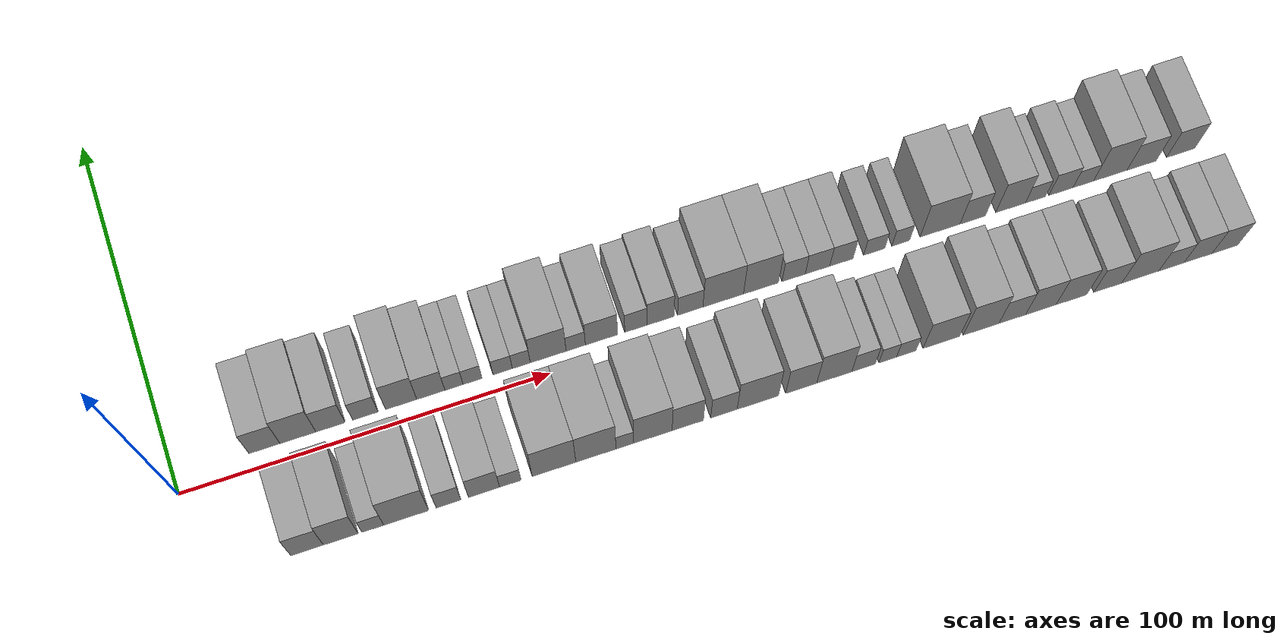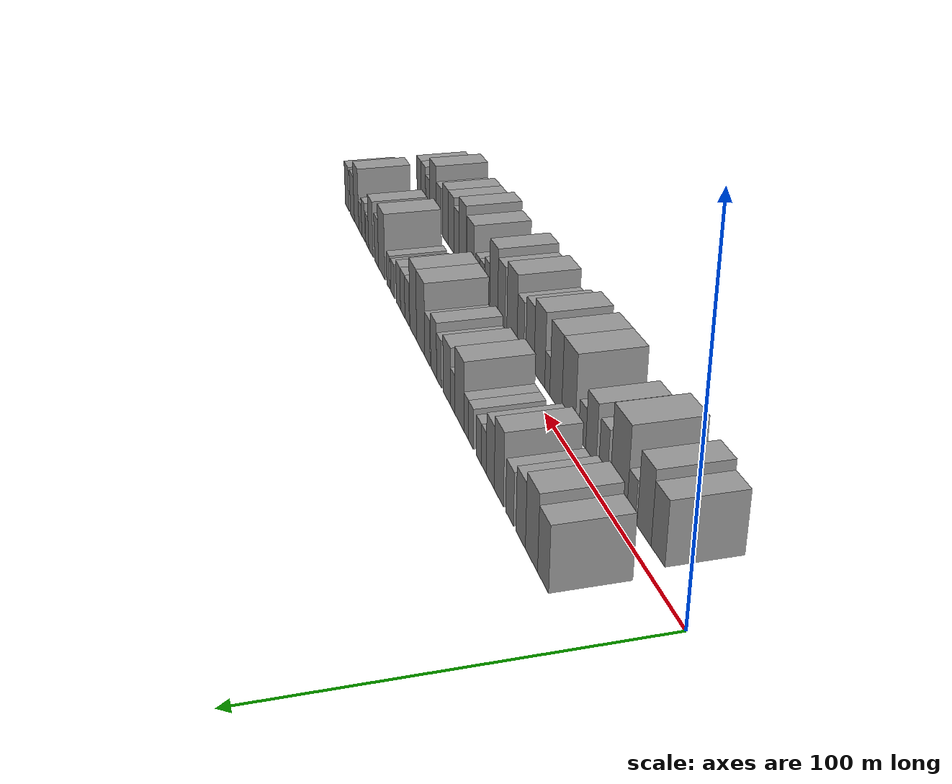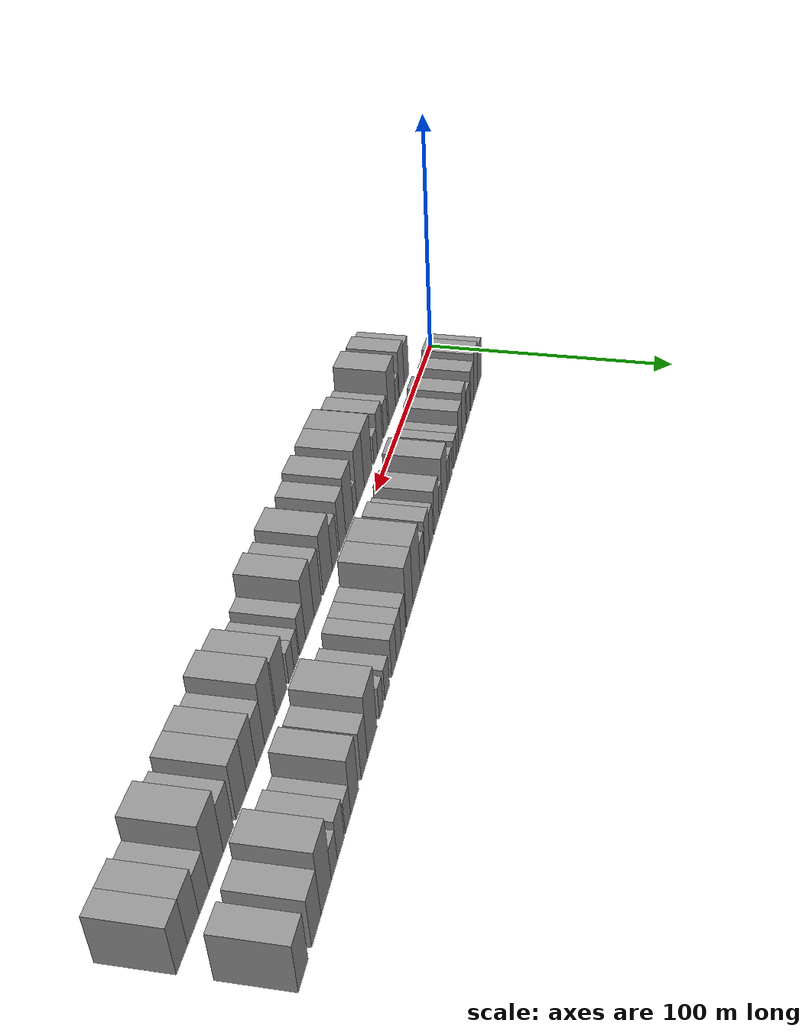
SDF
<sdf version="1.6">
 <world name="default">
  <scene>
   <sky><clouds><speed>12</speed></clouds></sky>
   <ambient>0.4 0.4 0.4 1</ambient>
   <background>0.7 0.7 0.7 1</background>
   <shadows>1</shadows>
  </scene>
  <gravity>0 0 -9.8066</gravity>
  <magnetic_field>6e-06 2.3e-05 -4.2e-05</magnetic_field>
  <physics default="0" name="default_physics" type="ode">
   <ode>
    <solver>
     <type>quick</type>
     <iters>10</iters>
     <sor>1.0</sor>
     <use_dynamic_moi_rescaling>0</use_dynamic_moi_rescaling>
    </solver>
    <constraints>
     <cfm>0</cfm>
     <erp>0.2</erp>
     <contact_max_correcting_vel>100</contact_max_correcting_vel>
     <contact_surface_layer>0.001</contact_surface_layer>
    </constraints>
   </ode>
   <max_step_size>0.004</max_step_size>
   <real_time_factor>1</real_time_factor>
   <real_time_update_rate>250</real_time_update_rate>
  </physics>
  <light name="sun" type="directional">
   <pose>0 0 10 0 0 0</pose>
   <diffuse>0.8 0.8 0.8 1</diffuse>
   <specular>0.2 0.2 0.2 1</specular>
   <attenuation>
    <range>1000</range>
    <constant>0.9</constant>
    <linear>0.01</linear>
    <quadratic>0.001</quadratic>
   </attenuation>
   <direction>-0.5 0.1 -0.9</direction>
  </light>
  <model name="building_1">
   <static>1</static>
   <pose>24.1467 14.5000 0 0.000000 0.000000 1.570796</pose>
   <link name="link">
    <pose>0 0 9.00 0 0 0</pose>
    <collision name="collision"><geometry><box><size>20.0000 8.2934 18.0000</size></box></geometry></collision>
    <visual name="visual">
     <cast_shadows>0</cast_shadows>
     <geometry><box><size>20.0000 8.2934 18.0000</size></box></geometry>
     <material>
      <script>
       <uri>model://grey_wall/materials/scripts</uri>
       <uri>model://grey_wall/materials/textures</uri>
       <name>vrc/grey_wall</name>
      </script>
     </material>
    </visual>
   </link>
  </model>
  <model name="building_2">
   <static>1</static>
   <pose>33.1050 14.5000 0 0.000000 0.000000 1.570796</pose>
   <link name="link">
    <pose>0 0 10.50 0 0 0</pose>
    <collision name="collision"><geometry><box><size>20.0000 9.6233 21.0000</size></box></geometry></collision>
    <visual name="visual">
     <cast_shadows>0</cast_shadows>
     <geometry><box><size>20.0000 9.6233 21.0000</size></box></geometry>
     <material>
      <script>
       <uri>model://grey_wall/materials/scripts</uri>
       <uri>model://grey_wall/materials/textures</uri>
       <name>vrc/grey_wall</name>
      </script>
     </material>
    </visual>
   </link>
  </model>
  <model name="building_3">
   <static>1</static>
   <pose>41.8600 14.5000 0 0.000000 0.000000 1.570796</pose>
   <link name="link">
    <pose>0 0 9.00 0 0 0</pose>
    <collision name="collision"><geometry><box><size>20.0000 7.8866 18.0000</size></box></geometry></collision>
    <visual name="visual">
     <cast_shadows>0</cast_shadows>
     <geometry><box><size>20.0000 7.8866 18.0000</size></box></geometry>
     <material>
      <script>
       <uri>model://grey_wall/materials/scripts</uri>
       <uri>model://grey_wall/materials/textures</uri>
       <name>vrc/grey_wall</name>
      </script>
     </material>
    </visual>
   </link>
  </model>
  <model name="building_4">
   <static>1</static>
   <pose>51.2368 14.5000 0 0.000000 0.000000 1.570796</pose>
   <link name="link">
    <pose>0 0 7.50 0 0 0</pose>
    <collision name="collision"><geometry><box><size>20.0000 6.8671 15.0000</size></box></geometry></collision>
    <visual name="visual">
     <cast_shadows>0</cast_shadows>
     <geometry><box><size>20.0000 6.8671 15.0000</size></box></geometry>
     <material>
      <script>
       <uri>model://grey_wall/materials/scripts</uri>
       <uri>model://grey_wall/materials/textures</uri>
       <name>vrc/grey_wall</name>
      </script>
     </material>
    </visual>
   </link>
  </model>
  <model name="building_5">
   <static>1</static>
   <pose>60.8920 14.5000 0 0.000000 0.000000 1.570796</pose>
   <link name="link">
    <pose>0 0 10.50 0 0 0</pose>
    <collision name="collision"><geometry><box><size>20.0000 8.4434 21.0000</size></box></geometry></collision>
    <visual name="visual">
     <cast_shadows>0</cast_shadows>
     <geometry><box><size>20.0000 8.4434 21.0000</size></box></geometry>
     <material>
      <script>
       <uri>model://grey_wall/materials/scripts</uri>
       <uri>model://grey_wall/materials/textures</uri>
       <name>vrc/grey_wall</name>
      </script>
     </material>
    </visual>
   </link>
  </model>
  <model name="building_6">
   <static>1</static>
   <pose>68.9235 14.5000 0 0.000000 0.000000 1.570796</pose>
   <link name="link">
    <pose>0 0 9.00 0 0 0</pose>
    <collision name="collision"><geometry><box><size>20.0000 7.6196 18.0000</size></box></geometry></collision>
    <visual name="visual">
     <cast_shadows>0</cast_shadows>
     <geometry><box><size>20.0000 7.6196 18.0000</size></box></geometry>
     <material>
      <script>
       <uri>model://grey_wall/materials/scripts</uri>
       <uri>model://grey_wall/materials/textures</uri>
       <name>vrc/grey_wall</name>
      </script>
     </material>
    </visual>
   </link>
  </model>
  <model name="building_7">
   <static>1</static>
   <pose>75.2003 14.5000 0 0.000000 0.000000 1.570796</pose>
   <link name="link">
    <pose>0 0 6.00 0 0 0</pose>
    <collision name="collision"><geometry><box><size>20.0000 4.9338 12.0000</size></box></geometry></collision>
    <visual name="visual">
     <cast_shadows>0</cast_shadows>
     <geometry><box><size>20.0000 4.9338 12.0000</size></box></geometry>
     <material>
      <script>
       <uri>model://grey_wall/materials/scripts</uri>
       <uri>model://grey_wall/materials/textures</uri>
       <name>vrc/grey_wall</name>
      </script>
     </material>
    </visual>
   </link>
  </model>
  <model name="building_8">
   <static>1</static>
   <pose>80.2478 14.5000 0 0.000000 0.000000 1.570796</pose>
   <link name="link">
    <pose>0 0 6.00 0 0 0</pose>
    <collision name="collision"><geometry><box><size>20.0000 5.1613 12.0000</size></box></geometry></collision>
    <visual name="visual">
     <cast_shadows>0</cast_shadows>
     <geometry><box><size>20.0000 5.1613 12.0000</size></box></geometry>
     <material>
      <script>
       <uri>model://grey_wall/materials/scripts</uri>
       <uri>model://grey_wall/materials/textures</uri>
       <name>vrc/grey_wall</name>
      </script>
     </material>
    </visual>
   </link>
  </model>
  <model name="building_9">
   <static>1</static>
   <pose>88.4487 14.5000 0 0.000000 0.000000 1.570796</pose>
   <link name="link">
    <pose>0 0 6.00 0 0 0</pose>
    <collision name="collision"><geometry><box><size>20.0000 5.2404 12.0000</size></box></geometry></collision>
    <visual name="visual">
     <cast_shadows>0</cast_shadows>
     <geometry><box><size>20.0000 5.2404 12.0000</size></box></geometry>
     <material>
      <script>
       <uri>model://grey_wall/materials/scripts</uri>
       <uri>model://grey_wall/materials/textures</uri>
       <name>vrc/grey_wall</name>
      </script>
     </material>
    </visual>
   </link>
  </model>
  <model name="building_10">
   <static>1</static>
   <pose>93.5204 14.5000 0 0.000000 0.000000 1.570796</pose>
   <link name="link">
    <pose>0 0 6.00 0 0 0</pose>
    <collision name="collision"><geometry><box><size>20.0000 4.9031 12.0000</size></box></geometry></collision>
    <visual name="visual">
     <cast_shadows>0</cast_shadows>
     <geometry><box><size>20.0000 4.9031 12.0000</size></box></geometry>
     <material>
      <script>
       <uri>model://grey_wall/materials/scripts</uri>
       <uri>model://grey_wall/materials/textures</uri>
       <name>vrc/grey_wall</name>
      </script>
     </material>
    </visual>
   </link>
  </model>
  <model name="building_11">
   <static>1</static>
   <pose>100.8840 14.5000 0 0.000000 0.000000 1.570796</pose>
   <link name="link">
    <pose>0 0 10.50 0 0 0</pose>
    <collision name="collision"><geometry><box><size>20.0000 9.8242 21.0000</size></box></geometry></collision>
    <visual name="visual">
     <cast_shadows>0</cast_shadows>
     <geometry><box><size>20.0000 9.8242 21.0000</size></box></geometry>
     <material>
      <script>
       <uri>model://grey_wall/materials/scripts</uri>
       <uri>model://grey_wall/materials/textures</uri>
       <name>vrc/grey_wall</name>
      </script>
     </material>
    </visual>
   </link>
  </model>
  <model name="building_12">
   <static>1</static>
   <pose>108.4404 14.5000 0 0.000000 0.000000 1.570796</pose>
   <link name="link">
    <pose>0 0 6.00 0 0 0</pose>
    <collision name="collision"><geometry><box><size>20.0000 5.2886 12.0000</size></box></geometry></collision>
    <visual name="visual">
     <cast_shadows>0</cast_shadows>
     <geometry><box><size>20.0000 5.2886 12.0000</size></box></geometry>
     <material>
      <script>
       <uri>model://grey_wall/materials/scripts</uri>
       <uri>model://grey_wall/materials/textures</uri>
       <name>vrc/grey_wall</name>
      </script>
     </material>
    </visual>
   </link>
  </model>
  <model name="building_13">
   <static>1</static>
   <pose>115.5101 14.5000 0 0.000000 0.000000 1.570796</pose>
   <link name="link">
    <pose>0 0 9.00 0 0 0</pose>
    <collision name="collision"><geometry><box><size>20.0000 8.8508 18.0000</size></box></geometry></collision>
    <visual name="visual">
     <cast_shadows>0</cast_shadows>
     <geometry><box><size>20.0000 8.8508 18.0000</size></box></geometry>
     <material>
      <script>
       <uri>model://grey_wall/materials/scripts</uri>
       <uri>model://grey_wall/materials/textures</uri>
       <name>vrc/grey_wall</name>
      </script>
     </material>
    </visual>
   </link>
  </model>
  <model name="building_14">
   <static>1</static>
   <pose>124.9862 14.5000 0 0.000000 0.000000 1.570796</pose>
   <link name="link">
    <pose>0 0 7.50 0 0 0</pose>
    <collision name="collision"><geometry><box><size>20.0000 6.1016 15.0000</size></box></geometry></collision>
    <visual name="visual">
     <cast_shadows>0</cast_shadows>
     <geometry><box><size>20.0000 6.1016 15.0000</size></box></geometry>
     <material>
      <script>
       <uri>model://grey_wall/materials/scripts</uri>
       <uri>model://grey_wall/materials/textures</uri>
       <name>vrc/grey_wall</name>
      </script>
     </material>
    </visual>
   </link>
  </model>
  <model name="building_15">
   <static>1</static>
   <pose>131.7829 14.5000 0 0.000000 0.000000 1.570796</pose>
   <link name="link">
    <pose>0 0 9.00 0 0 0</pose>
    <collision name="collision"><geometry><box><size>20.0000 7.4918 18.0000</size></box></geometry></collision>
    <visual name="visual">
     <cast_shadows>0</cast_shadows>
     <geometry><box><size>20.0000 7.4918 18.0000</size></box></geometry>
     <material>
      <script>
       <uri>model://grey_wall/materials/scripts</uri>
       <uri>model://grey_wall/materials/textures</uri>
       <name>vrc/grey_wall</name>
      </script>
     </material>
    </visual>
   </link>
  </model>
  <model name="building_16">
   <static>1</static>
   <pose>140.0508 14.5000 0 0.000000 0.000000 1.570796</pose>
   <link name="link">
    <pose>0 0 7.50 0 0 0</pose>
    <collision name="collision"><geometry><box><size>20.0000 7.0439 15.0000</size></box></geometry></collision>
    <visual name="visual">
     <cast_shadows>0</cast_shadows>
     <geometry><box><size>20.0000 7.0439 15.0000</size></box></geometry>
     <material>
      <script>
       <uri>model://grey_wall/materials/scripts</uri>
       <uri>model://grey_wall/materials/textures</uri>
       <name>vrc/grey_wall</name>
      </script>
     </material>
    </visual>
   </link>
  </model>
  <model name="building_17">
   <static>1</static>
   <pose>149.2212 14.5000 0 0.000000 0.000000 1.570796</pose>
   <link name="link">
    <pose>0 0 12.00 0 0 0</pose>
    <collision name="collision"><geometry><box><size>20.0000 11.2969 24.0000</size></box></geometry></collision>
    <visual name="visual">
     <cast_shadows>0</cast_shadows>
     <geometry><box><size>20.0000 11.2969 24.0000</size></box></geometry>
     <material>
      <script>
       <uri>model://grey_wall/materials/scripts</uri>
       <uri>model://grey_wall/materials/textures</uri>
       <name>vrc/grey_wall</name>
      </script>
     </material>
    </visual>
   </link>
  </model>
  <model name="building_18">
   <static>1</static>
   <pose>159.7557 14.5000 0 0.000000 0.000000 1.570796</pose>
   <link name="link">
    <pose>0 0 12.00 0 0 0</pose>
    <collision name="collision"><geometry><box><size>20.0000 9.7722 24.0000</size></box></geometry></collision>
    <visual name="visual">
     <cast_shadows>0</cast_shadows>
     <geometry><box><size>20.0000 9.7722 24.0000</size></box></geometry>
     <material>
      <script>
       <uri>model://grey_wall/materials/scripts</uri>
       <uri>model://grey_wall/materials/textures</uri>
       <name>vrc/grey_wall</name>
      </script>
     </material>
    </visual>
   </link>
  </model>
  <model name="building_19">
   <static>1</static>
   <pose>168.8953 14.5000 0 0.000000 0.000000 1.570796</pose>
   <link name="link">
    <pose>0 0 7.50 0 0 0</pose>
    <collision name="collision"><geometry><box><size>20.0000 6.5069 15.0000</size></box></geometry></collision>
    <visual name="visual">
     <cast_shadows>0</cast_shadows>
     <geometry><box><size>20.0000 6.5069 15.0000</size></box></geometry>
     <material>
      <script>
       <uri>model://grey_wall/materials/scripts</uri>
       <uri>model://grey_wall/materials/textures</uri>
       <name>vrc/grey_wall</name>
      </script>
     </material>
    </visual>
   </link>
  </model>
  <model name="building_20">
   <static>1</static>
   <pose>175.5884 14.5000 0 0.000000 0.000000 1.570796</pose>
   <link name="link">
    <pose>0 0 7.50 0 0 0</pose>
    <collision name="collision"><geometry><box><size>20.0000 6.8795 15.0000</size></box></geometry></collision>
    <visual name="visual">
     <cast_shadows>0</cast_shadows>
     <geometry><box><size>20.0000 6.8795 15.0000</size></box></geometry>
     <material>
      <script>
       <uri>model://grey_wall/materials/scripts</uri>
       <uri>model://grey_wall/materials/textures</uri>
       <name>vrc/grey_wall</name>
      </script>
     </material>
    </visual>
   </link>
  </model>
  <model name="building_21">
   <static>1</static>
   <pose>182.3086 14.5000 0 0.000000 0.000000 1.570796</pose>
   <link name="link">
    <pose>0 0 7.50 0 0 0</pose>
    <collision name="collision"><geometry><box><size>20.0000 6.5608 15.0000</size></box></geometry></collision>
    <visual name="visual">
     <cast_shadows>0</cast_shadows>
     <geometry><box><size>20.0000 6.5608 15.0000</size></box></geometry>
     <material>
      <script>
       <uri>model://grey_wall/materials/scripts</uri>
       <uri>model://grey_wall/materials/textures</uri>
       <name>vrc/grey_wall</name>
      </script>
     </material>
    </visual>
   </link>
  </model>
  <model name="building_22">
   <static>1</static>
   <pose>191.5790 14.5000 0 0.000000 0.000000 1.570796</pose>
   <link name="link">
    <pose>0 0 6.00 0 0 0</pose>
    <collision name="collision"><geometry><box><size>20.0000 5.9800 12.0000</size></box></geometry></collision>
    <visual name="visual">
     <cast_shadows>0</cast_shadows>
     <geometry><box><size>20.0000 5.9800 12.0000</size></box></geometry>
     <material>
      <script>
       <uri>model://grey_wall/materials/scripts</uri>
       <uri>model://grey_wall/materials/textures</uri>
       <name>vrc/grey_wall</name>
      </script>
     </material>
    </visual>
   </link>
  </model>
  <model name="building_23">
   <static>1</static>
   <pose>199.0759 14.5000 0 0.000000 0.000000 1.570796</pose>
   <link name="link">
    <pose>0 0 6.00 0 0 0</pose>
    <collision name="collision"><geometry><box><size>20.0000 5.0139 12.0000</size></box></geometry></collision>
    <visual name="visual">
     <cast_shadows>0</cast_shadows>
     <geometry><box><size>20.0000 5.0139 12.0000</size></box></geometry>
     <material>
      <script>
       <uri>model://grey_wall/materials/scripts</uri>
       <uri>model://grey_wall/materials/textures</uri>
       <name>vrc/grey_wall</name>
      </script>
     </material>
    </visual>
   </link>
  </model>
  <model name="building_24">
   <static>1</static>
   <pose>210.2397 14.5000 0 0.000000 0.000000 1.570796</pose>
   <link name="link">
    <pose>0 0 12.00 0 0 0</pose>
    <collision name="collision"><geometry><box><size>20.0000 11.3136 24.0000</size></box></geometry></collision>
    <visual name="visual">
     <cast_shadows>0</cast_shadows>
     <geometry><box><size>20.0000 11.3136 24.0000</size></box></geometry>
     <material>
      <script>
       <uri>model://grey_wall/materials/scripts</uri>
       <uri>model://grey_wall/materials/textures</uri>
       <name>vrc/grey_wall</name>
      </script>
     </material>
    </visual>
   </link>
  </model>
  <model name="building_25">
   <static>1</static>
   <pose>219.5023 14.5000 0 0.000000 0.000000 1.570796</pose>
   <link name="link">
    <pose>0 0 9.00 0 0 0</pose>
    <collision name="collision"><geometry><box><size>20.0000 7.2116 18.0000</size></box></geometry></collision>
    <visual name="visual">
     <cast_shadows>0</cast_shadows>
     <geometry><box><size>20.0000 7.2116 18.0000</size></box></geometry>
     <material>
      <script>
       <uri>model://grey_wall/materials/scripts</uri>
       <uri>model://grey_wall/materials/textures</uri>
       <name>vrc/grey_wall</name>
      </script>
     </material>
    </visual>
   </link>
  </model>
  <model name="building_26">
   <static>1</static>
   <pose>230.3308 14.5000 0 0.000000 0.000000 1.570796</pose>
   <link name="link">
    <pose>0 0 10.50 0 0 0</pose>
    <collision name="collision"><geometry><box><size>20.0000 8.4454 21.0000</size></box></geometry></collision>
    <visual name="visual">
     <cast_shadows>0</cast_shadows>
     <geometry><box><size>20.0000 8.4454 21.0000</size></box></geometry>
     <material>
      <script>
       <uri>model://grey_wall/materials/scripts</uri>
       <uri>model://grey_wall/materials/textures</uri>
       <name>vrc/grey_wall</name>
      </script>
     </material>
    </visual>
   </link>
  </model>
  <model name="building_27">
   <static>1</static>
   <pose>237.4444 14.5000 0 0.000000 0.000000 1.570796</pose>
   <link name="link">
    <pose>0 0 6.00 0 0 0</pose>
    <collision name="collision"><geometry><box><size>20.0000 5.7818 12.0000</size></box></geometry></collision>
    <visual name="visual">
     <cast_shadows>0</cast_shadows>
     <geometry><box><size>20.0000 5.7818 12.0000</size></box></geometry>
     <material>
      <script>
       <uri>model://grey_wall/materials/scripts</uri>
       <uri>model://grey_wall/materials/textures</uri>
       <name>vrc/grey_wall</name>
      </script>
     </material>
    </visual>
   </link>
  </model>
  <model name="building_28">
   <static>1</static>
   <pose>244.7989 14.5000 0 0.000000 0.000000 1.570796</pose>
   <link name="link">
    <pose>0 0 7.50 0 0 0</pose>
    <collision name="collision"><geometry><box><size>20.0000 6.9273 15.0000</size></box></geometry></collision>
    <visual name="visual">
     <cast_shadows>0</cast_shadows>
     <geometry><box><size>20.0000 6.9273 15.0000</size></box></geometry>
     <material>
      <script>
       <uri>model://grey_wall/materials/scripts</uri>
       <uri>model://grey_wall/materials/textures</uri>
       <name>vrc/grey_wall</name>
      </script>
     </material>
    </visual>
   </link>
  </model>
  <model name="building_29">
   <static>1</static>
   <pose>251.2158 14.5000 0 0.000000 0.000000 1.570796</pose>
   <link name="link">
    <pose>0 0 6.00 0 0 0</pose>
    <collision name="collision"><geometry><box><size>20.0000 5.9065 12.0000</size></box></geometry></collision>
    <visual name="visual">
     <cast_shadows>0</cast_shadows>
     <geometry><box><size>20.0000 5.9065 12.0000</size></box></geometry>
     <material>
      <script>
       <uri>model://grey_wall/materials/scripts</uri>
       <uri>model://grey_wall/materials/textures</uri>
       <name>vrc/grey_wall</name>
      </script>
     </material>
    </visual>
   </link>
  </model>
  <model name="building_30">
   <static>1</static>
   <pose>259.0124 14.5000 0 0.000000 0.000000 1.570796</pose>
   <link name="link">
    <pose>0 0 12.00 0 0 0</pose>
    <collision name="collision"><geometry><box><size>20.0000 9.6868 24.0000</size></box></geometry></collision>
    <visual name="visual">
     <cast_shadows>0</cast_shadows>
     <geometry><box><size>20.0000 9.6868 24.0000</size></box></geometry>
     <material>
      <script>
       <uri>model://grey_wall/materials/scripts</uri>
       <uri>model://grey_wall/materials/textures</uri>
       <name>vrc/grey_wall</name>
      </script>
     </material>
    </visual>
   </link>
  </model>
  <model name="building_31">
   <static>1</static>
   <pose>268.0664 14.5000 0 0.000000 0.000000 1.570796</pose>
   <link name="link">
    <pose>0 0 9.00 0 0 0</pose>
    <collision name="collision"><geometry><box><size>20.0000 8.4212 18.0000</size></box></geometry></collision>
    <visual name="visual">
     <cast_shadows>0</cast_shadows>
     <geometry><box><size>20.0000 8.4212 18.0000</size></box></geometry>
     <material>
      <script>
       <uri>model://grey_wall/materials/scripts</uri>
       <uri>model://grey_wall/materials/textures</uri>
       <name>vrc/grey_wall</name>
      </script>
     </material>
    </visual>
   </link>
  </model>
  <model name="building_32">
   <static>1</static>
   <pose>279.4104 14.5000 0 0.000000 0.000000 1.570796</pose>
   <link name="link">
    <pose>0 0 9.00 0 0 0</pose>
    <collision name="collision"><geometry><box><size>20.0000 8.2668 18.0000</size></box></geometry></collision>
    <visual name="visual">
     <cast_shadows>0</cast_shadows>
     <geometry><box><size>20.0000 8.2668 18.0000</size></box></geometry>
     <material>
      <script>
       <uri>model://grey_wall/materials/scripts</uri>
       <uri>model://grey_wall/materials/textures</uri>
       <name>vrc/grey_wall</name>
      </script>
     </material>
    </visual>
   </link>
  </model>
  <model name="building_33">
   <static>1</static>
   <pose>27.2985 -14.5000 0 0.000000 0.000000 1.570796</pose>
   <link name="link">
    <pose>0 0 9.00 0 0 0</pose>
    <collision name="collision"><geometry><box><size>20.0000 8.5969 18.0000</size></box></geometry></collision>
    <visual name="visual">
     <cast_shadows>0</cast_shadows>
     <geometry><box><size>20.0000 8.5969 18.0000</size></box></geometry>
     <material>
      <script>
       <uri>model://grey_wall/materials/scripts</uri>
       <uri>model://grey_wall/materials/textures</uri>
       <name>vrc/grey_wall</name>
      </script>
     </material>
    </visual>
   </link>
  </model>
  <model name="building_34">
   <static>1</static>
   <pose>36.1975 -14.5000 0 0.000000 0.000000 1.570796</pose>
   <link name="link">
    <pose>0 0 10.50 0 0 0</pose>
    <collision name="collision"><geometry><box><size>20.0000 9.2012 21.0000</size></box></geometry></collision>
    <visual name="visual">
     <cast_shadows>0</cast_shadows>
     <geometry><box><size>20.0000 9.2012 21.0000</size></box></geometry>
     <material>
      <script>
       <uri>model://grey_wall/materials/scripts</uri>
       <uri>model://grey_wall/materials/textures</uri>
       <name>vrc/grey_wall</name>
      </script>
     </material>
    </visual>
   </link>
  </model>
  <model name="building_35">
   <static>1</static>
   <pose>44.6813 -14.5000 0 0.000000 0.000000 1.570796</pose>
   <link name="link">
    <pose>0 0 6.00 0 0 0</pose>
    <collision name="collision"><geometry><box><size>20.0000 5.7665 12.0000</size></box></geometry></collision>
    <visual name="visual">
     <cast_shadows>0</cast_shadows>
     <geometry><box><size>20.0000 5.7665 12.0000</size></box></geometry>
     <material>
      <script>
       <uri>model://grey_wall/materials/scripts</uri>
       <uri>model://grey_wall/materials/textures</uri>
       <name>vrc/grey_wall</name>
      </script>
     </material>
    </visual>
   </link>
  </model>
  <model name="building_36">
   <static>1</static>
   <pose>53.5441 -14.5000 0 0.000000 0.000000 1.570796</pose>
   <link name="link">
    <pose>0 0 12.00 0 0 0</pose>
    <collision name="collision"><geometry><box><size>20.0000 11.9591 24.0000</size></box></geometry></collision>
    <visual name="visual">
     <cast_shadows>0</cast_shadows>
     <geometry><box><size>20.0000 11.9591 24.0000</size></box></geometry>
     <material>
      <script>
       <uri>model://grey_wall/materials/scripts</uri>
       <uri>model://grey_wall/materials/textures</uri>
       <name>vrc/grey_wall</name>
      </script>
     </material>
    </visual>
   </link>
  </model>
  <model name="building_37">
   <static>1</static>
   <pose>64.8328 -14.5000 0 0.000000 0.000000 1.570796</pose>
   <link name="link">
    <pose>0 0 7.50 0 0 0</pose>
    <collision name="collision"><geometry><box><size>20.0000 6.6182 15.0000</size></box></geometry></collision>
    <visual name="visual">
     <cast_shadows>0</cast_shadows>
     <geometry><box><size>20.0000 6.6182 15.0000</size></box></geometry>
     <material>
      <script>
       <uri>model://grey_wall/materials/scripts</uri>
       <uri>model://grey_wall/materials/textures</uri>
       <name>vrc/grey_wall</name>
      </script>
     </material>
    </visual>
   </link>
  </model>
  <model name="building_38">
   <static>1</static>
   <pose>74.3163 -14.5000 0 0.000000 0.000000 1.570796</pose>
   <link name="link">
    <pose>0 0 9.00 0 0 0</pose>
    <collision name="collision"><geometry><box><size>20.0000 8.3490 18.0000</size></box></geometry></collision>
    <visual name="visual">
     <cast_shadows>0</cast_shadows>
     <geometry><box><size>20.0000 8.3490 18.0000</size></box></geometry>
     <material>
      <script>
       <uri>model://grey_wall/materials/scripts</uri>
       <uri>model://grey_wall/materials/textures</uri>
       <name>vrc/grey_wall</name>
      </script>
     </material>
    </visual>
   </link>
  </model>
  <model name="building_39">
   <static>1</static>
   <pose>81.3745 -14.5000 0 0.000000 0.000000 1.570796</pose>
   <link name="link">
    <pose>0 0 6.00 0 0 0</pose>
    <collision name="collision"><geometry><box><size>20.0000 5.7673 12.0000</size></box></geometry></collision>
    <visual name="visual">
     <cast_shadows>0</cast_shadows>
     <geometry><box><size>20.0000 5.7673 12.0000</size></box></geometry>
     <material>
      <script>
       <uri>model://grey_wall/materials/scripts</uri>
       <uri>model://grey_wall/materials/textures</uri>
       <name>vrc/grey_wall</name>
      </script>
     </material>
    </visual>
   </link>
  </model>
  <model name="building_40">
   <static>1</static>
   <pose>93.1284 -14.5000 0 0.000000 0.000000 1.570796</pose>
   <link name="link">
    <pose>0 0 12.00 0 0 0</pose>
    <collision name="collision"><geometry><box><size>20.0000 11.7405 24.0000</size></box></geometry></collision>
    <visual name="visual">
     <cast_shadows>0</cast_shadows>
     <geometry><box><size>20.0000 11.7405 24.0000</size></box></geometry>
     <material>
      <script>
       <uri>model://grey_wall/materials/scripts</uri>
       <uri>model://grey_wall/materials/textures</uri>
       <name>vrc/grey_wall</name>
      </script>
     </material>
    </visual>
   </link>
  </model>
  <model name="building_41">
   <static>1</static>
   <pose>104.4301 -14.5000 0 0.000000 0.000000 1.570796</pose>
   <link name="link">
    <pose>0 0 12.00 0 0 0</pose>
    <collision name="collision"><geometry><box><size>20.0000 10.8629 24.0000</size></box></geometry></collision>
    <visual name="visual">
     <cast_shadows>0</cast_shadows>
     <geometry><box><size>20.0000 10.8629 24.0000</size></box></geometry>
     <material>
      <script>
       <uri>model://grey_wall/materials/scripts</uri>
       <uri>model://grey_wall/materials/textures</uri>
       <name>vrc/grey_wall</name>
      </script>
     </material>
    </visual>
   </link>
  </model>
  <model name="building_42">
   <static>1</static>
   <pose>112.2717 -14.5000 0 0.000000 0.000000 1.570796</pose>
   <link name="link">
    <pose>0 0 6.00 0 0 0</pose>
    <collision name="collision"><geometry><box><size>20.0000 4.8202 12.0000</size></box></geometry></collision>
    <visual name="visual">
     <cast_shadows>0</cast_shadows>
     <geometry><box><size>20.0000 4.8202 12.0000</size></box></geometry>
     <material>
      <script>
       <uri>model://grey_wall/materials/scripts</uri>
       <uri>model://grey_wall/materials/textures</uri>
       <name>vrc/grey_wall</name>
      </script>
     </material>
    </visual>
   </link>
  </model>
  <model name="building_43">
   <static>1</static>
   <pose>119.9024 -14.5000 0 0.000000 0.000000 1.570796</pose>
   <link name="link">
    <pose>0 0 12.00 0 0 0</pose>
    <collision name="collision"><geometry><box><size>20.0000 10.4413 24.0000</size></box></geometry></collision>
    <visual name="visual">
     <cast_shadows>0</cast_shadows>
     <geometry><box><size>20.0000 10.4413 24.0000</size></box></geometry>
     <material>
      <script>
       <uri>model://grey_wall/materials/scripts</uri>
       <uri>model://grey_wall/materials/textures</uri>
       <name>vrc/grey_wall</name>
      </script>
     </material>
    </visual>
   </link>
  </model>
  <model name="building_44">
   <static>1</static>
   <pose>129.3944 -14.5000 0 0.000000 0.000000 1.570796</pose>
   <link name="link">
    <pose>0 0 10.50 0 0 0</pose>
    <collision name="collision"><geometry><box><size>20.0000 8.5426 21.0000</size></box></geometry></collision>
    <visual name="visual">
     <cast_shadows>0</cast_shadows>
     <geometry><box><size>20.0000 8.5426 21.0000</size></box></geometry>
     <material>
      <script>
       <uri>model://grey_wall/materials/scripts</uri>
       <uri>model://grey_wall/materials/textures</uri>
       <name>vrc/grey_wall</name>
      </script>
     </material>
    </visual>
   </link>
  </model>
  <model name="building_45">
   <static>1</static>
   <pose>139.2882 -14.5000 0 0.000000 0.000000 1.570796</pose>
   <link name="link">
    <pose>0 0 9.00 0 0 0</pose>
    <collision name="collision"><geometry><box><size>20.0000 7.2450 18.0000</size></box></geometry></collision>
    <visual name="visual">
     <cast_shadows>0</cast_shadows>
     <geometry><box><size>20.0000 7.2450 18.0000</size></box></geometry>
     <material>
      <script>
       <uri>model://grey_wall/materials/scripts</uri>
       <uri>model://grey_wall/materials/textures</uri>
       <name>vrc/grey_wall</name>
      </script>
     </material>
    </visual>
   </link>
  </model>
  <model name="building_46">
   <static>1</static>
   <pose>148.5924 -14.5000 0 0.000000 0.000000 1.570796</pose>
   <link name="link">
    <pose>0 0 12.00 0 0 0</pose>
    <collision name="collision"><geometry><box><size>20.0000 11.3633 24.0000</size></box></geometry></collision>
    <visual name="visual">
     <cast_shadows>0</cast_shadows>
     <geometry><box><size>20.0000 11.3633 24.0000</size></box></geometry>
     <material>
      <script>
       <uri>model://grey_wall/materials/scripts</uri>
       <uri>model://grey_wall/materials/textures</uri>
       <name>vrc/grey_wall</name>
      </script>
     </material>
    </visual>
   </link>
  </model>
  <model name="building_47">
   <static>1</static>
   <pose>160.5470 -14.5000 0 0.000000 0.000000 1.570796</pose>
   <link name="link">
    <pose>0 0 10.50 0 0 0</pose>
    <collision name="collision"><geometry><box><size>20.0000 8.5459 21.0000</size></box></geometry></collision>
    <visual name="visual">
     <cast_shadows>0</cast_shadows>
     <geometry><box><size>20.0000 8.5459 21.0000</size></box></geometry>
     <material>
      <script>
       <uri>model://grey_wall/materials/scripts</uri>
       <uri>model://grey_wall/materials/textures</uri>
       <name>vrc/grey_wall</name>
      </script>
     </material>
    </visual>
   </link>
  </model>
  <model name="building_48">
   <static>1</static>
   <pose>169.6706 -14.5000 0 0.000000 0.000000 1.570796</pose>
   <link name="link">
    <pose>0 0 12.00 0 0 0</pose>
    <collision name="collision"><geometry><box><size>20.0000 9.7012 24.0000</size></box></geometry></collision>
    <visual name="visual">
     <cast_shadows>0</cast_shadows>
     <geometry><box><size>20.0000 9.7012 24.0000</size></box></geometry>
     <material>
      <script>
       <uri>model://grey_wall/materials/scripts</uri>
       <uri>model://grey_wall/materials/textures</uri>
       <name>vrc/grey_wall</name>
      </script>
     </material>
    </visual>
   </link>
  </model>
  <model name="building_49">
   <static>1</static>
   <pose>177.7854 -14.5000 0 0.000000 0.000000 1.570796</pose>
   <link name="link">
    <pose>0 0 7.50 0 0 0</pose>
    <collision name="collision"><geometry><box><size>20.0000 6.5284 15.0000</size></box></geometry></collision>
    <visual name="visual">
     <cast_shadows>0</cast_shadows>
     <geometry><box><size>20.0000 6.5284 15.0000</size></box></geometry>
     <material>
      <script>
       <uri>model://grey_wall/materials/scripts</uri>
       <uri>model://grey_wall/materials/textures</uri>
       <name>vrc/grey_wall</name>
      </script>
     </material>
    </visual>
   </link>
  </model>
  <model name="building_50">
   <static>1</static>
   <pose>184.5117 -14.5000 0 0.000000 0.000000 1.570796</pose>
   <link name="link">
    <pose>0 0 6.00 0 0 0</pose>
    <collision name="collision"><geometry><box><size>20.0000 4.9244 12.0000</size></box></geometry></collision>
    <visual name="visual">
     <cast_shadows>0</cast_shadows>
     <geometry><box><size>20.0000 4.9244 12.0000</size></box></geometry>
     <material>
      <script>
       <uri>model://grey_wall/materials/scripts</uri>
       <uri>model://grey_wall/materials/textures</uri>
       <name>vrc/grey_wall</name>
      </script>
     </material>
    </visual>
   </link>
  </model>
  <model name="building_51">
   <static>1</static>
   <pose>189.6761 -14.5000 0 0.000000 0.000000 1.570796</pose>
   <link name="link">
    <pose>0 0 6.00 0 0 0</pose>
    <collision name="collision"><geometry><box><size>20.0000 5.4043 12.0000</size></box></geometry></collision>
    <visual name="visual">
     <cast_shadows>0</cast_shadows>
     <geometry><box><size>20.0000 5.4043 12.0000</size></box></geometry>
     <material>
      <script>
       <uri>model://grey_wall/materials/scripts</uri>
       <uri>model://grey_wall/materials/textures</uri>
       <name>vrc/grey_wall</name>
      </script>
     </material>
    </visual>
   </link>
  </model>
  <model name="building_52">
   <static>1</static>
   <pose>199.5108 -14.5000 0 0.000000 0.000000 1.570796</pose>
   <link name="link">
    <pose>0 0 10.50 0 0 0</pose>
    <collision name="collision"><geometry><box><size>20.0000 10.2652 21.0000</size></box></geometry></collision>
    <visual name="visual">
     <cast_shadows>0</cast_shadows>
     <geometry><box><size>20.0000 10.2652 21.0000</size></box></geometry>
     <material>
      <script>
       <uri>model://grey_wall/materials/scripts</uri>
       <uri>model://grey_wall/materials/textures</uri>
       <name>vrc/grey_wall</name>
      </script>
     </material>
    </visual>
   </link>
  </model>
  <model name="building_53">
   <static>1</static>
   <pose>210.6467 -14.5000 0 0.000000 0.000000 1.570796</pose>
   <link name="link">
    <pose>0 0 12.00 0 0 0</pose>
    <collision name="collision"><geometry><box><size>20.0000 10.0066 24.0000</size></box></geometry></collision>
    <visual name="visual">
     <cast_shadows>0</cast_shadows>
     <geometry><box><size>20.0000 10.0066 24.0000</size></box></geometry>
     <material>
      <script>
       <uri>model://grey_wall/materials/scripts</uri>
       <uri>model://grey_wall/materials/textures</uri>
       <name>vrc/grey_wall</name>
      </script>
     </material>
    </visual>
   </link>
  </model>
  <model name="building_54">
   <static>1</static>
   <pose>219.3950 -14.5000 0 0.000000 0.000000 1.570796</pose>
   <link name="link">
    <pose>0 0 9.00 0 0 0</pose>
    <collision name="collision"><geometry><box><size>20.0000 7.4900 18.0000</size></box></geometry></collision>
    <visual name="visual">
     <cast_shadows>0</cast_shadows>
     <geometry><box><size>20.0000 7.4900 18.0000</size></box></geometry>
     <material>
      <script>
       <uri>model://grey_wall/materials/scripts</uri>
       <uri>model://grey_wall/materials/textures</uri>
       <name>vrc/grey_wall</name>
      </script>
     </material>
    </visual>
   </link>
  </model>
  <model name="building_55">
   <static>1</static>
   <pose>227.4463 -14.5000 0 0.000000 0.000000 1.570796</pose>
   <link name="link">
    <pose>0 0 10.50 0 0 0</pose>
    <collision name="collision"><geometry><box><size>20.0000 8.6125 21.0000</size></box></geometry></collision>
    <visual name="visual">
     <cast_shadows>0</cast_shadows>
     <geometry><box><size>20.0000 8.6125 21.0000</size></box></geometry>
     <material>
      <script>
       <uri>model://grey_wall/materials/scripts</uri>
       <uri>model://grey_wall/materials/textures</uri>
       <name>vrc/grey_wall</name>
      </script>
     </material>
    </visual>
   </link>
  </model>
  <model name="building_56">
   <static>1</static>
   <pose>236.0894 -14.5000 0 0.000000 0.000000 1.570796</pose>
   <link name="link">
    <pose>0 0 10.50 0 0 0</pose>
    <collision name="collision"><geometry><box><size>20.0000 8.6738 21.0000</size></box></geometry></collision>
    <visual name="visual">
     <cast_shadows>0</cast_shadows>
     <geometry><box><size>20.0000 8.6738 21.0000</size></box></geometry>
     <material>
      <script>
       <uri>model://grey_wall/materials/scripts</uri>
       <uri>model://grey_wall/materials/textures</uri>
       <name>vrc/grey_wall</name>
      </script>
     </material>
    </visual>
   </link>
  </model>
  <model name="building_57">
   <static>1</static>
   <pose>246.3865 -14.5000 0 0.000000 0.000000 1.570796</pose>
   <link name="link">
    <pose>0 0 9.00 0 0 0</pose>
    <collision name="collision"><geometry><box><size>20.0000 7.9202 18.0000</size></box></geometry></collision>
    <visual name="visual">
     <cast_shadows>0</cast_shadows>
     <geometry><box><size>20.0000 7.9202 18.0000</size></box></geometry>
     <material>
      <script>
       <uri>model://grey_wall/materials/scripts</uri>
       <uri>model://grey_wall/materials/textures</uri>
       <name>vrc/grey_wall</name>
      </script>
     </material>
    </visual>
   </link>
  </model>
  <model name="building_58">
   <static>1</static>
   <pose>255.6386 -14.5000 0 0.000000 0.000000 1.570796</pose>
   <link name="link">
    <pose>0 0 12.00 0 0 0</pose>
    <collision name="collision"><geometry><box><size>20.0000 10.5840 24.0000</size></box></geometry></collision>
    <visual name="visual">
     <cast_shadows>0</cast_shadows>
     <geometry><box><size>20.0000 10.5840 24.0000</size></box></geometry>
     <material>
      <script>
       <uri>model://grey_wall/materials/scripts</uri>
       <uri>model://grey_wall/materials/textures</uri>
       <name>vrc/grey_wall</name>
      </script>
     </material>
    </visual>
   </link>
  </model>
  <model name="building_59">
   <static>1</static>
   <pose>264.5419 -14.5000 0 0.000000 0.000000 1.570796</pose>
   <link name="link">
    <pose>0 0 7.50 0 0 0</pose>
    <collision name="collision"><geometry><box><size>20.0000 7.2226 15.0000</size></box></geometry></collision>
    <visual name="visual">
     <cast_shadows>0</cast_shadows>
     <geometry><box><size>20.0000 7.2226 15.0000</size></box></geometry>
     <material>
      <script>
       <uri>model://grey_wall/materials/scripts</uri>
       <uri>model://grey_wall/materials/textures</uri>
       <name>vrc/grey_wall</name>
      </script>
     </material>
    </visual>
   </link>
  </model>
  <model name="building_60">
   <static>1</static>
   <pose>272.1348 -14.5000 0 0.000000 0.000000 1.570796</pose>
   <link name="link">
    <pose>0 0 9.00 0 0 0</pose>
    <collision name="collision"><geometry><box><size>20.0000 7.9630 18.0000</size></box></geometry></collision>
    <visual name="visual">
     <cast_shadows>0</cast_shadows>
     <geometry><box><size>20.0000 7.9630 18.0000</size></box></geometry>
     <material>
      <script>
       <uri>model://grey_wall/materials/scripts</uri>
       <uri>model://grey_wall/materials/textures</uri>
       <name>vrc/grey_wall</name>
      </script>
     </material>
    </visual>
   </link>
  </model>
  <model name="building_61">
   <static>1</static>
   <pose>279.8317 -14.5000 0 0.000000 0.000000 1.570796</pose>
   <link name="link">
    <pose>0 0 9.00 0 0 0</pose>
    <collision name="collision"><geometry><box><size>20.0000 7.4309 18.0000</size></box></geometry></collision>
    <visual name="visual">
     <cast_shadows>0</cast_shadows>
     <geometry><box><size>20.0000 7.4309 18.0000</size></box></geometry>
     <material>
      <script>
       <uri>model://grey_wall/materials/scripts</uri>
       <uri>model://grey_wall/materials/textures</uri>
       <name>vrc/grey_wall</name>
      </script>
     </material>
    </visual>
   </link>
  </model>
 </world>
</sdf>
